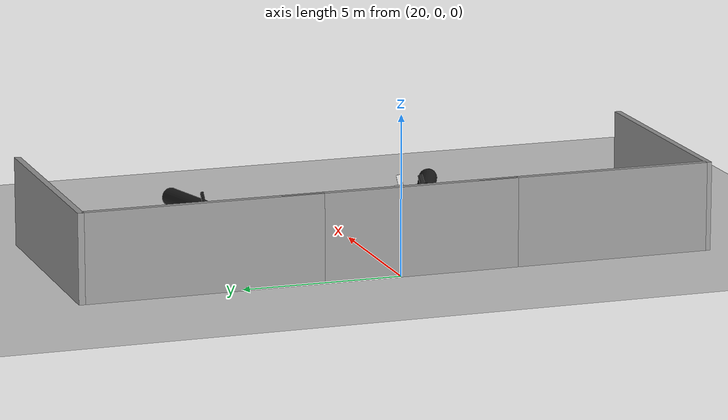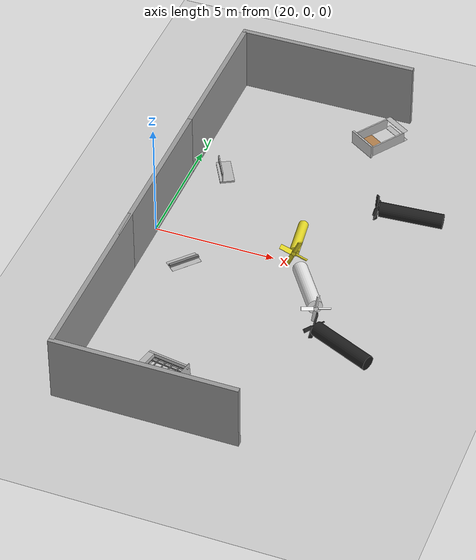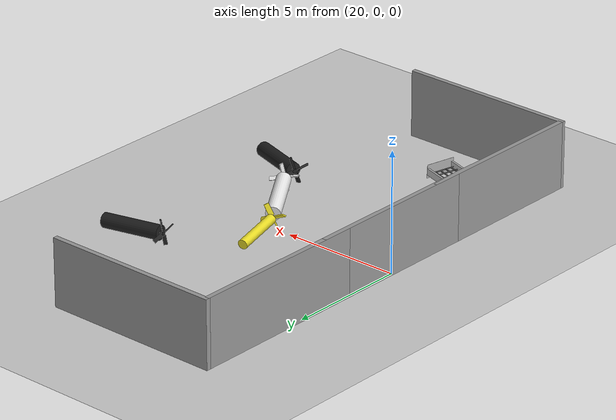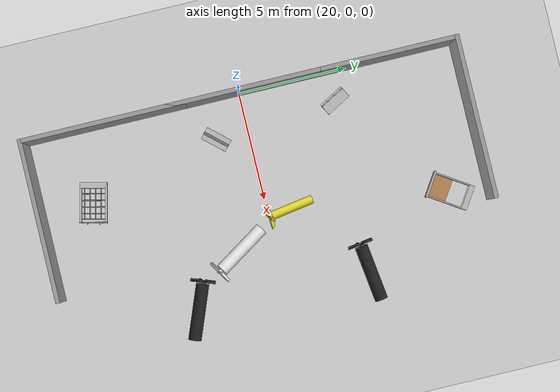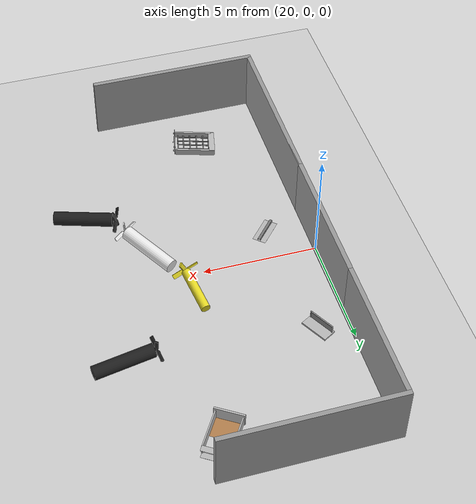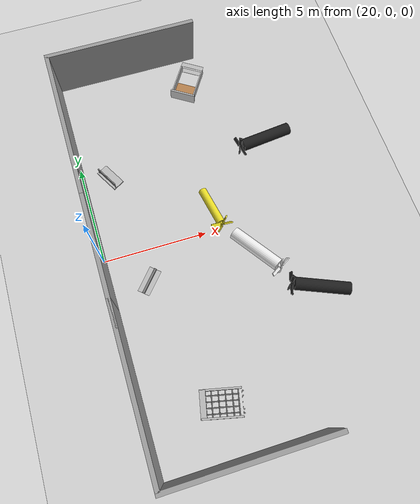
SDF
<sdf version="1.6">
 <world name="default">
  <model name="ground_plane">
   <static>1</static>
   <link name="link">
    <collision name="collision">
     <geometry><plane><normal>0 0 1</normal><size>100 100</size></plane></geometry>
     <surface><friction><ode><mu>100</mu><mu2>50</mu2></ode></friction></surface>
    </collision>
    <visual name="visual">
     <cast_shadows>0</cast_shadows>
     <geometry><plane><normal>0 0 1</normal><size>100 100</size></plane></geometry>
     <material>
      <script><uri>file://media/materials/scripts/gazebo.material</uri><name>Gazebo/Grey</name></script>
     </material>
    </visual>
   </link>
  </model>
  <model name="grey_wall_clone_0">
   <static>1</static>
   <link name="link">
    <pose>0 0 1.4 0 -0 0</pose>
    <collision name="collision"><geometry><box><size>7.5 0.2 2.8</size></box></geometry></collision>
    <visual name="visual">
     <cast_shadows>0</cast_shadows>
     <geometry><box><size>7.5 0.2 2.8</size></box></geometry>
     <material>
      <script>
       <uri>model://grey_wall/materials/scripts</uri>
       <uri>model://grey_wall/materials/textures</uri>
       <name>vrc/grey_wall</name>
      </script>
     </material>
    </visual>
   </link>
   <pose>20 -6.2 0 0 0 -1.5708</pose>
  </model>
  <model name="grey_wall_clone_1">
   <static>1</static>
   <link name="link">
    <pose>0 0 1.4 0 -0 0</pose>
    <collision name="collision"><geometry><box><size>7.5 0.2 2.8</size></box></geometry></collision>
    <visual name="visual">
     <cast_shadows>0</cast_shadows>
     <geometry><box><size>7.5 0.2 2.8</size></box></geometry>
     <material>
      <script>
       <uri>model://grey_wall/materials/scripts</uri>
       <uri>model://grey_wall/materials/textures</uri>
       <name>vrc/grey_wall</name>
      </script>
     </material>
    </visual>
   </link>
   <pose>20 6.2 0 0 0 -1.5708</pose>
  </model>
  <model name="grey_wall_clone_4">
   <static>1</static>
   <link name="link">
    <pose>0 0 1.4 0 -0 0</pose>
    <collision name="collision"><geometry><box><size>7.5 0.2 2.8</size></box></geometry></collision>
    <visual name="visual">
     <cast_shadows>0</cast_shadows>
     <geometry><box><size>7.5 0.2 2.8</size></box></geometry>
     <material>
      <script>
       <uri>model://grey_wall/materials/scripts</uri>
       <uri>model://grey_wall/materials/textures</uri>
       <name>vrc/grey_wall</name>
      </script>
     </material>
    </visual>
   </link>
   <pose>23.65 10 0 0 -0 3.14159</pose>
  </model>
  <model name="grey_wall_clone_5">
   <static>1</static>
   <link name="link">
    <pose>0 0 1.4 0 -0 0</pose>
    <collision name="collision"><geometry><box><size>7.5 0.2 2.8</size></box></geometry></collision>
    <visual name="visual">
     <cast_shadows>0</cast_shadows>
     <geometry><box><size>7.5 0.2 2.8</size></box></geometry>
     <material>
      <script>
       <uri>model://grey_wall/materials/scripts</uri>
       <uri>model://grey_wall/materials/textures</uri>
       <name>vrc/grey_wall</name>
      </script>
     </material>
    </visual>
   </link>
   <pose>23.65 -10 0 0 -0 3.14159</pose>
  </model>
  <model name="grey_wall_clone_6">
   <static>1</static>
   <link name="link">
    <pose>0 0 1.4 0 -0 0</pose>
    <collision name="collision"><geometry><box><size>7.5 0.2 2.8</size></box></geometry></collision>
    <visual name="visual">
     <cast_shadows>0</cast_shadows>
     <geometry><box><size>7.5 0.2 2.8</size></box></geometry>
     <material>
      <script>
       <uri>model://grey_wall/materials/scripts</uri>
       <uri>model://grey_wall/materials/textures</uri>
       <name>vrc/grey_wall</name>
      </script>
     </material>
    </visual>
   </link>
   <pose>20 0 0 0 0 -1.5708</pose>
  </model>
  <model name="frc2016_drawbridge">
   <link name="base">
    <inertial>
     <mass>10</mass>
     <pose>0 0 1 0 -0 0</pose>
     <inertia><ixx>3.64907</ixx><ixy>0</ixy><ixz>0</ixz><iyy>4.67075</iyy><iyz>0</iyz><izz>1.66649</izz></inertia>
    </inertial>
    <visual name="platform">
     <pose>0 0 0.0425 0 -0 0</pose>
     <geometry><box><size>1.27 0.5969 0.085</size></box></geometry>
    </visual>
    <collision name="platform">
     <pose>0 0 0.0425 0 -0 0</pose>
     <geometry><box><size>1.27 0.5969 0.085</size></box></geometry>
    </collision>
    <visual name="right_wall">
     <pose>0.55879 0.04444 0.889 0 -0 0</pose>
     <geometry><box><size>0.05715 0.45698 1.77165</size></box></geometry>
    </visual>
    <collision name="right_wall">
     <pose>0.55879 0.04444 0.889 0 -0 0</pose>
     <geometry><box><size>0.05715 0.45698 1.77165</size></box></geometry>
    </collision>
    <visual name="left_wall">
     <pose>-0.55879 0.04444 0.889 0 -0 0</pose>
     <geometry><box><size>0.05715 0.45698 1.77165</size></box></geometry>
    </visual>
    <collision name="left_wall">
     <pose>-0.55879 0.04444 0.889 0 -0 0</pose>
     <geometry><box><size>0.05715 0.45698 1.77165</size></box></geometry>
    </collision>
    <visual name="front_upper_wall">
     <pose>0 0.27611 1.84286 0 -0 0</pose>
     <geometry><box><size>1.1557 0.006347 0.254</size></box></geometry>
    </visual>
    <collision name="front_upper_wall">
     <pose>0 0.27611 1.84286 0 -0 0</pose>
     <geometry><box><size>1.1557 0.006347 0.254</size></box></geometry>
    </collision>
    <visual name="back_upper_wall">
     <pose>0 -0.18722 1.84286 0 -0 0</pose>
     <geometry><box><size>1.1557 0.006347 0.254</size></box></geometry>
    </visual>
    <collision name="back_upper_wall">
     <pose>0 -0.18722 1.84286 0 -0 0</pose>
     <geometry><box><size>1.1557 0.006347 0.254</size></box></geometry>
    </collision>
   </link>
   <link name="bridge">
    <pose>0 0.28245 0.50577 0 -0 0</pose>
    <inertial>
     <mass>2</mass>
     <pose>0 -0.28245 -0.50577 0 -0 0</pose>
     <inertia>
      <ixx>0.139361</ixx>
      <ixy>0</ixy>
      <ixz>0</ixz>
      <iyy>0.357088</iyy>
      <iyz>0</iyz>
      <izz>0.217741</izz>
     </inertia>
    </inertial>
    <visual name="visual">
     <geometry><box><size>1.14298 0.006347 0.9144</size></box></geometry>
     <material><script><name>Gazebo/WoodFloor</name><uri>__default__</uri></script></material>
    </visual>
    <collision name="collision"><geometry><box><size>1.14298 0.006347 0.9144</size></box></geometry></collision>
   </link>
   <joint name="bridge_joint" type="revolute">
    <pose>0 0 -0.4172 0 -0 0</pose>
    <parent>base</parent>
    <child>bridge</child>
    <axis>
     <xyz>1 0 0</xyz>
     <limit><lower>-2</lower><upper>0</upper></limit>
     <use_parent_model_frame>0</use_parent_model_frame>
     <dynamics><spring_reference>0</spring_reference><spring_stiffness>0</spring_stiffness></dynamics>
    </axis>
   </joint>
   <pose>26.0761 7.50823 0.325057 -1.58543 5e-06 -0.579793</pose>
  </model>
  <model name="frc2016_lowbar">
   <link name="base">
    <inertial>
     <mass>50</mass>
     <inertia>
      <ixx>0.035543</ixx>
      <ixy>0</ixy>
      <ixz>0</ixz>
      <iyy>0.134412</iyy>
      <iyz>0</iyz>
      <izz>0.165376</izz>
     </inertia>
    </inertial>
    <visual name="platform">
     <pose>0 0 0.039065 0 -0 0</pose>
     <geometry><box><size>1.26 0.5996 0.07813</size></box></geometry>
    </visual>
    <collision name="platform">
     <pose>0 0 0.039065 0 -0 0</pose>
     <geometry><box><size>1.27 0.6096 0.07813</size></box></geometry>
    </collision>
    <visual name="right_column">
     <pose>-0.57845 -0.18464 0.26863 0 -0 0</pose>
     <geometry><cylinder><radius>0.0254</radius><length>0.381</length></cylinder></geometry>
    </visual>
    <collision name="right_column">
     <pose>-0.57845 -0.18464 0.26863 0 -0 0</pose>
     <geometry><cylinder><radius>0.0254</radius><length>0.381</length></cylinder></geometry>
    </collision>
    <visual name="left_column">
     <pose>0.57845 -0.18464 0.26863 0 -0 0</pose>
     <geometry><cylinder><radius>0.0254</radius><length>0.381</length></cylinder></geometry>
    </visual>
    <collision name="left_column">
     <pose>0.57845 -0.18464 0.26863 0 -0 0</pose>
     <geometry><cylinder><radius>0.0254</radius><length>0.381</length></cylinder></geometry>
    </collision>
    <visual name="horizontal">
     <pose>0 -0.18464 0.43556 0 1.5707 0</pose>
     <geometry><cylinder><radius>0.0254</radius><length>1.2018</length></cylinder></geometry>
    </visual>
    <collision name="horizontal">
     <pose>0 -0.18464 0.43556 0 1.5707 0</pose>
     <geometry><cylinder><radius>0.0254</radius><length>1.2018</length></cylinder></geometry>
    </collision>
   </link>
   <link name="wall">
    <pose>0 -0.1778 0.24323 0 -0 0</pose>
    <inertial>
     <mass>1</mass>
     <inertia>
      <ixx>0.00774528</ixx>
      <ixy>0</ixy>
      <ixz>0</ixz>
      <iyy>0.116613</iyy>
      <iyz>0</iyz>
      <izz>0.108874</izz>
     </inertia>
    </inertial>
    <visual name="visual">
     <geometry><box><size>1.1176 0.00635 0.3</size></box></geometry>
     <material><ambient>0.46 0.46 0.46 1</ambient><diffuse>0.46 0.46 0.46 1</diffuse></material>
    </visual>
    <collision name="collision"><geometry><box><size>1.143 0.00635 0.3</size></box></geometry></collision>
   </link>
   <joint name="bar_joint" type="revolute">
    <pose>0 0 0.36378 0 -0 0</pose>
    <parent>base</parent>
    <child>wall</child>
    <axis>
     <xyz>1 0 0</xyz>
     <limit><lower>-1.5707</lower><upper>1.5707</upper></limit>
     <use_parent_model_frame>0</use_parent_model_frame>
     <dynamics><spring_reference>0</spring_reference><spring_stiffness>0</spring_stiffness></dynamics>
    </axis>
   </joint>
   <pose>21.3353 4.20095 -5e-06 2.5e-05 -4e-06 -1.06253</pose>
  </model>
  <model name="frc2016_portcullis">
   <link name="base">
    <inertial>
     <mass>50</mass>
     <pose>0 0 1.02941 0 -0 0</pose>
     <inertia><ixx>3.81711</ixx><ixy>0</ixy><ixz>0</ixz><iyy>4.87698</iyy><iyz>0</iyz><izz>1.6283</izz></inertia>
    </inertial>
    <visual name="platform">
     <pose>0 0 0.07284 0 -0 0</pose>
     <geometry><box><size>1.27 0.5842 0.003175</size></box></geometry>
    </visual>
    <collision name="platform">
     <pose>0 0 0.07284 0 -0 0</pose>
     <geometry><box><size>1.27 0.5842 0.003175</size></box></geometry>
    </collision>
    <visual name="left_column">
     <pose>0.59284 0 0.99042 0 -0 0</pose>
     <geometry><box><size>0.08375 0.28575 1.83198</size></box></geometry>
    </visual>
    <collision name="left_column">
     <pose>0.59284 0 0.99042 0 -0 0</pose>
     <geometry><box><size>0.08375 0.28575 1.83198</size></box></geometry>
    </collision>
    <visual name="right_column">
     <pose>-0.57759 0 0.99042 0 -0 0</pose>
     <geometry><box><size>0.08375 0.28575 1.83198</size></box></geometry>
    </visual>
    <collision name="right_column">
     <pose>-0.57759 0 0.99042 0 -0 0</pose>
     <geometry><box><size>0.08375 0.28575 1.83198</size></box></geometry>
    </collision>
    <visual name="top">
     <pose>-0.00034 0 1.77722 0 -0 0</pose>
     <geometry><box><size>1.22962 0.28575 0.26657</size></box></geometry>
    </visual>
    <collision name="top">
     <pose>-0.00034 0 1.77722 0 -0 0</pose>
     <geometry><box><size>1.22962 0.28575 0.26657</size></box></geometry>
    </collision>
    <visual name="castor1">
     <pose>-0.45651 -0.16234 0.03272 0 -0 0</pose>
     <geometry><sphere><radius>0.03272</radius></sphere></geometry>
    </visual>
    <collision name="castor1">
     <pose>-0.45651 -0.16234 0.03272 0 -0 0</pose>
     <geometry><sphere><radius>0.03272</radius></sphere></geometry>
    </collision>
    <visual name="castor2">
     <pose>-0.27883 0.21836 0.03272 0 -0 0</pose>
     <geometry><sphere><radius>0.03272</radius></sphere></geometry>
    </visual>
    <collision name="castor2">
     <pose>-0.27883 0.21836 0.03272 0 -0 0</pose>
     <geometry><sphere><radius>0.03272</radius></sphere></geometry>
    </collision>
    <visual name="castor3">
     <pose>0.28083 0.21906 0.03272 0 -0 0</pose>
     <geometry><sphere><radius>0.03272</radius></sphere></geometry>
    </visual>
    <collision name="castor3">
     <pose>0.28083 0.21906 0.03272 0 -0 0</pose>
     <geometry><sphere><radius>0.03272</radius></sphere></geometry>
    </collision>
    <visual name="castor4">
     <pose>0.45871 -0.16186 0.03272 0 -0 0</pose>
     <geometry><sphere><radius>0.03272</radius></sphere></geometry>
    </visual>
    <collision name="castor4">
     <pose>0.45871 -0.16186 0.03272 0 -0 0</pose>
     <geometry><sphere><radius>0.03272</radius></sphere></geometry>
    </collision>
   </link>
   <link name="gate">
    <pose>-0.0287 0.02885 0.93327 0 -0 0</pose>
    <inertial>
     <mass>2</mass>
     <inertia><ixx>3.81711</ixx><ixy>0</ixy><ixz>0</ixz><iyy>4.87698</iyy><iyz>0</iyz><izz>1.6283</izz></inertia>
    </inertial>
    <collision name="collision"><geometry><box><size>1.1938 0.02496 1.45732</size></box></geometry></collision>
    <visual name="horz_1">
     <pose>0 0 -0.70326 0 -0 0</pose>
     <geometry><box><size>1.1938 0.02496 0.0508</size></box></geometry>
     <material><ambient>0.4 0.4 0.4 1</ambient><diffuse>0.4 0.4 0.4 1</diffuse></material>
    </visual>
    <visual name="horz_2">
     <pose>0 0 -0.44926 0 -0 0</pose>
     <geometry><box><size>1.1938 0.02496 0.0508</size></box></geometry>
     <material><ambient>0.4 0.4 0.4 1</ambient><diffuse>0.4 0.4 0.4 1</diffuse></material>
    </visual>
    <visual name="horz_3">
     <pose>0 0 -0.14517 0 -0 0</pose>
     <geometry><box><size>1.1938 0.02496 0.0508</size></box></geometry>
     <material><ambient>0.4 0.4 0.4 1</ambient><diffuse>0.4 0.4 0.4 1</diffuse></material>
    </visual>
    <visual name="horz_4">
     <pose>0 0 0.16034 0 -0 0</pose>
     <geometry><box><size>1.1938 0.02496 0.0508</size></box></geometry>
     <material><ambient>0.4 0.4 0.4 1</ambient><diffuse>0.4 0.4 0.4 1</diffuse></material>
    </visual>
    <visual name="horz_5">
     <pose>0 0 0.46514 0 -0 0</pose>
     <geometry><box><size>1.1938 0.02496 0.0508</size></box></geometry>
     <material><ambient>0.4 0.4 0.4 1</ambient><diffuse>0.4 0.4 0.4 1</diffuse></material>
    </visual>
    <visual name="horz_6">
     <pose>0 0 0.72994 0 -0 0</pose>
     <geometry><box><size>1.1938 0.02496 0.0508</size></box></geometry>
     <material><ambient>0.4 0.4 0.4 1</ambient><diffuse>0.4 0.4 0.4 1</diffuse></material>
    </visual>
    <visual name="vert_1">
     <pose>-0.58448 0 0 0 -0 0</pose>
     <geometry><box><size>0.02495 0.02496 1.45732</size></box></geometry>
     <material><ambient>0.4 0.4 0.4 1</ambient><diffuse>0.4 0.4 0.4 1</diffuse></material>
    </visual>
    <visual name="vert_2">
     <pose>-0.38128 0 0 0 -0 0</pose>
     <geometry><box><size>0.0508 0.02496 1.45732</size></box></geometry>
     <material><ambient>0.4 0.4 0.4 1</ambient><diffuse>0.4 0.4 0.4 1</diffuse></material>
    </visual>
    <visual name="vert_3">
     <pose>-0.12728 0 0 0 -0 0</pose>
     <geometry><box><size>0.0508 0.02496 1.45732</size></box></geometry>
     <material><ambient>0.4 0.4 0.4 1</ambient><diffuse>0.4 0.4 0.4 1</diffuse></material>
    </visual>
    <visual name="vert_4">
     <pose>0.12672 0 0 0 -0 0</pose>
     <geometry><box><size>0.0508 0.02496 1.45732</size></box></geometry>
     <material><ambient>0.4 0.4 0.4 1</ambient><diffuse>0.4 0.4 0.4 1</diffuse></material>
    </visual>
    <visual name="vert_5">
     <pose>0.38072 0 0 0 -0 0</pose>
     <geometry><box><size>0.0508 0.02496 1.45732</size></box></geometry>
     <material><ambient>0.4 0.4 0.4 1</ambient><diffuse>0.4 0.4 0.4 1</diffuse></material>
    </visual>
    <visual name="vert_6">
     <pose>0.58392 0 0 0 -0 0</pose>
     <geometry><box><size>0.02495 0.02496 1.45732</size></box></geometry>
     <material><ambient>0.4 0.4 0.4 1</ambient><diffuse>0.4 0.4 0.4 1</diffuse></material>
    </visual>
   </link>
   <joint name="joint" type="prismatic">
    <parent>base</parent>
    <child>gate</child>
    <axis>
     <xyz>0 0 1</xyz>
     <limit><lower>0</lower><upper>1</upper></limit>
     <use_parent_model_frame>0</use_parent_model_frame>
     <dynamics><spring_reference>0</spring_reference><spring_stiffness>0</spring_stiffness></dynamics>
    </axis>
   </joint>
   <pose>24.2736 -7.86723 0.297169 -1.65189 -0 1.3455</pose>
  </model>
  <model name="frc2016_rockwall">
   <static>1</static>
   <link name="link">
    <inertial>
     <mass>10</mass>
     <pose>0 0 0.08974 0 -0 0</pose>
     <inertia><ixx>0.327091</ixx><ixy>0</ixy><ixz>0</ixz><iyy>1.37417</iyy><iyz>0</iyz><izz>1.64109</izz></inertia>
    </inertial>
    <visual name="platform">
     <pose>0 0 0.06432 0 -0 0</pose>
     <geometry><box><size>1.27 0.5969 0.003175</size></box></geometry>
    </visual>
    <collision name="platform">
     <pose>0 0 0.06432 0 -0 0</pose>
     <geometry><box><size>1.27 0.5969 0.003175</size></box></geometry>
    </collision>
    <visual name="up1">
     <pose>0 0.05166 0.12537 0 -0 0</pose>
     <geometry><box><size>1.27 0.00462 0.11892</size></box></geometry>
     <material><ambient>0.46 0.46 0.46 1</ambient><diffuse>0.46 0.46 0.46 1</diffuse></material>
    </visual>
    <collision name="up1">
     <pose>0 0.05166 0.12537 0 -0 0</pose>
     <geometry><box><size>1.27 0.00462 0.11892</size></box></geometry>
    </collision>
    <visual name="up2">
     <pose>0 -0.05801 0.12537 0 -0 0</pose>
     <geometry><box><size>1.27 0.00462 0.11892</size></box></geometry>
     <material><ambient>0.46 0.46 0.46 1</ambient><diffuse>0.46 0.46 0.46 1</diffuse></material>
    </visual>
    <collision name="up2">
     <pose>0 -0.05801 0.12537 0 -0 0</pose>
     <geometry><box><size>1.27 0.00462 0.11892</size></box></geometry>
    </collision>
    <visual name="top">
     <pose>0 -0.00249 0.18252 0 -0 0</pose>
     <geometry><box><size>1.27 0.1143 0.00462</size></box></geometry>
     <material><ambient>0.46 0.46 0.46 1</ambient><diffuse>0.46 0.46 0.46 1</diffuse></material>
    </visual>
    <collision name="top">
     <pose>0 -0.00249 0.18252 0 -0 0</pose>
     <geometry><box><size>1.27 0.1143 0.00462</size></box></geometry>
    </collision>
   </link>
   <pose>21.801 -1.51189 0 0 -0 0.841051</pose>
  </model>
  <model name="submarine_sinking_clone_0">
   <pose>28.2919 -3.72508 0.449058 1.50506 -0.292708 -1.92639</pose>
   <static>1</static>
   <link name="body">
    <pose>0 0 -1.07935 0 -0 0</pose>
    <inertial>
     <mass>1102.7</mass>
     <inertia><ixx>645.998</ixx><ixy>0</ixy><ixz>0</ixz><iyy>645.998</iyy><iyz>0</iyz><izz>49.6215</izz></inertia>
    </inertial>
    <visual name="body_visual">
     <geometry><cylinder><radius>0.3</radius><length>2.6</length></cylinder></geometry>
     <material>
      <script><uri>file://media/materials/scripts/gazebo.material</uri><name>Gazebo/Black</name></script>
     </material>
    </visual>
    <collision name="body_collision">
     <geometry><cylinder><radius>0.3</radius><length>2.6</length></cylinder></geometry>
    </collision>
    <visual name="spacer_visual">
     <pose>0 0 1.37855 0 -0 0</pose>
     <geometry><cylinder><radius>0.0933402</radius><length>0.127211</length></cylinder></geometry>
     <material>
      <script><uri>file://media/materials/scripts/gazebo.material</uri><name>Gazebo/Black</name></script>
     </material>
    </visual>
   </link>
   <link name="propeller">
    <pose>0 0 0.3455 3.14159 -0 0</pose>
    <inertial>
     <mass>25.2312</mass>
     <inertia><ixx>0.531907</ixx><ixy>0</ixy><ixz>0</ixz><iyy>0.531907</iyy><iyz>0</iyz><izz>1.0513</izz></inertia>
    </inertial>
    <visual name="blade1_visual">
     <pose>0.34334 0 0 0.785398 -0 0</pose>
     <geometry><box><size>0.5 0.154178 0.05455</size></box></geometry>
     <material>
      <script><uri>file://media/materials/scripts/gazebo.material</uri><name>Gazebo/Black</name></script>
     </material>
    </visual>
    <collision name="blade1_collision">
     <pose>0.34334 0 0 0.785398 -0 0</pose>
     <geometry><box><size>0.5 0.154178 0.05455</size></box></geometry>
    </collision>
    <visual name="blade2_visual">
     <pose>0 0.34334 0 0.785398 0 1.5708</pose>
     <geometry><box><size>0.5 0.154178 0.05455</size></box></geometry>
     <material>
      <script><uri>file://media/materials/scripts/gazebo.material</uri><name>Gazebo/Black</name></script>
     </material>
    </visual>
    <collision name="blade2_collision">
     <pose>0 0.34334 0 0.785398 0 1.5708</pose>
     <geometry><box><size>0.5 0.154178 0.05455</size></box></geometry>
    </collision>
    <visual name="blade3_visual">
     <pose>-0.34334 -0 0 -0.785398 0 0</pose>
     <geometry><box><size>0.5 0.154178 0.05455</size></box></geometry>
     <material>
      <script><uri>file://media/materials/scripts/gazebo.material</uri><name>Gazebo/Black</name></script>
     </material>
    </visual>
    <collision name="blade3_collision">
     <pose>-0.34334 -0 0 -0.785398 0 0</pose>
     <geometry><box><size>0.5 0.154178 0.05455</size></box></geometry>
    </collision>
    <visual name="blade4_visual">
     <pose>-0 -0.34334 0 -0.785398 -0 1.5708</pose>
     <geometry><box><size>0.5 0.154178 0.05455</size></box></geometry>
     <material>
      <script><uri>file://media/materials/scripts/gazebo.material</uri><name>Gazebo/Black</name></script>
     </material>
    </visual>
    <collision name="blade4_collision">
     <pose>-0 -0.34334 0 -0.785398 -0 1.5708</pose>
     <geometry><box><size>0.5 0.154178 0.05455</size></box></geometry>
    </collision>
   </link>
   <joint name="spinning_joint" type="revolute">
    <parent>body</parent>
    <child>propeller</child>
    <axis>
     <xyz>0 0 1</xyz>
     <use_parent_model_frame>1</use_parent_model_frame>
     <limit><lower>-1e+12</lower><upper>1e+12</upper><effort>-1</effort><velocity>-1</velocity></limit>
     <dynamics><spring_reference>0</spring_reference><spring_stiffness>0</spring_stiffness></dynamics>
    </axis>
   </joint>
   <plugin name="buoyancy" filename="libBuoyancyPlugin.so"><fluid_density>999.1026</fluid_density></plugin>
  </model>
  <model name="submarine_sinking_clone_1">
   <pose>28.3373 3.80949 0.449063 1.50674 -0.186656 -1.42673</pose>
   <link name="body">
    <pose>0 0 -1.07935 0 -0 0</pose>
    <inertial>
     <mass>1102.7</mass>
     <inertia><ixx>645.998</ixx><ixy>0</ixy><ixz>0</ixz><iyy>645.998</iyy><iyz>0</iyz><izz>49.6215</izz></inertia>
    </inertial>
    <visual name="body_visual">
     <geometry><cylinder><radius>0.3</radius><length>2.6</length></cylinder></geometry>
     <material>
      <script><uri>file://media/materials/scripts/gazebo.material</uri><name>Gazebo/Black</name></script>
     </material>
    </visual>
    <collision name="body_collision">
     <geometry><cylinder><radius>0.3</radius><length>2.6</length></cylinder></geometry>
    </collision>
    <visual name="spacer_visual">
     <pose>0 0 1.37855 0 -0 0</pose>
     <geometry><cylinder><radius>0.0933402</radius><length>0.127211</length></cylinder></geometry>
     <material>
      <script><uri>file://media/materials/scripts/gazebo.material</uri><name>Gazebo/Black</name></script>
     </material>
    </visual>
   </link>
   <link name="propeller">
    <pose>0 0 0.3455 3.14159 -0 0</pose>
    <inertial>
     <mass>25.2312</mass>
     <inertia><ixx>0.531907</ixx><ixy>0</ixy><ixz>0</ixz><iyy>0.531907</iyy><iyz>0</iyz><izz>1.0513</izz></inertia>
    </inertial>
    <visual name="blade1_visual">
     <pose>0.34334 0 0 0.785398 -0 0</pose>
     <geometry><box><size>0.5 0.154178 0.05455</size></box></geometry>
     <material>
      <script><uri>file://media/materials/scripts/gazebo.material</uri><name>Gazebo/Black</name></script>
     </material>
    </visual>
    <collision name="blade1_collision">
     <pose>0.34334 0 0 0.785398 -0 0</pose>
     <geometry><box><size>0.5 0.154178 0.05455</size></box></geometry>
    </collision>
    <visual name="blade2_visual">
     <pose>0 0.34334 0 0.785398 0 1.5708</pose>
     <geometry><box><size>0.5 0.154178 0.05455</size></box></geometry>
     <material>
      <script><uri>file://media/materials/scripts/gazebo.material</uri><name>Gazebo/Black</name></script>
     </material>
    </visual>
    <collision name="blade2_collision">
     <pose>0 0.34334 0 0.785398 0 1.5708</pose>
     <geometry><box><size>0.5 0.154178 0.05455</size></box></geometry>
    </collision>
    <visual name="blade3_visual">
     <pose>-0.34334 -0 0 -0.785398 0 0</pose>
     <geometry><box><size>0.5 0.154178 0.05455</size></box></geometry>
     <material>
      <script><uri>file://media/materials/scripts/gazebo.material</uri><name>Gazebo/Black</name></script>
     </material>
    </visual>
    <collision name="blade3_collision">
     <pose>-0.34334 -0 0 -0.785398 0 0</pose>
     <geometry><box><size>0.5 0.154178 0.05455</size></box></geometry>
    </collision>
    <visual name="blade4_visual">
     <pose>-0 -0.34334 0 -0.785398 -0 1.5708</pose>
     <geometry><box><size>0.5 0.154178 0.05455</size></box></geometry>
     <material>
      <script><uri>file://media/materials/scripts/gazebo.material</uri><name>Gazebo/Black</name></script>
     </material>
    </visual>
    <collision name="blade4_collision">
     <pose>-0 -0.34334 0 -0.785398 -0 1.5708</pose>
     <geometry><box><size>0.5 0.154178 0.05455</size></box></geometry>
    </collision>
   </link>
   <joint name="spinning_joint" type="revolute">
    <parent>body</parent>
    <child>propeller</child>
    <axis>
     <xyz>0 0 1</xyz>
     <use_parent_model_frame>1</use_parent_model_frame>
     <limit><lower>-1e+12</lower><upper>1e+12</upper><effort>-1</effort><velocity>-1</velocity></limit>
     <dynamics><spring_reference>0</spring_reference><spring_stiffness>0</spring_stiffness></dynamics>
    </axis>
   </joint>
   <plugin name="buoyancy" filename="libBuoyancyPlugin.so"><fluid_density>999.1026</fluid_density></plugin>
  </model>
  <model name="submarine">
   <pose>25.6547 1.12544 0.332419 1.25351 -1.12604 0.445903</pose>
   <link name="body">
    <inertial>
     <mass>251.327</mass>
     <inertia><ixx>86.2891</ixx><ixy>0</ixy><ixz>0</ixz><iyy>86.2891</iyy><iyz>0</iyz><izz>5.02655</izz></inertia>
    </inertial>
    <visual name="body_visual">
     <geometry><cylinder><radius>0.2</radius><length>2</length></cylinder></geometry>
     <material>
      <script><uri>file://media/materials/scripts/gazebo.material</uri><name>Gazebo/Yellow</name></script>
     </material>
    </visual>
    <collision name="body_collision">
     <geometry><cylinder><radius>0.2</radius><length>2</length></cylinder></geometry>
    </collision>
    <visual name="spacer_visual">
     <pose>0 0 1.05855 0 -0 0</pose>
     <geometry><cylinder><radius>0.0933402</radius><length>0.127211</length></cylinder></geometry>
     <material>
      <script><uri>file://media/materials/scripts/gazebo.material</uri><name>Gazebo/Yellow</name></script>
     </material>
    </visual>
   </link>
   <link name="propeller">
    <pose>0 0 1.09 3.14159 -0 0</pose>
    <inertial>
     <mass>21.82</mass>
     <inertia>
      <ixx>0.459994</ixx>
      <ixy>0</ixy>
      <ixz>0</ixz>
      <iyy>0.459994</iyy>
      <iyz>0</iyz>
      <izz>0.909167</izz>
     </inertia>
    </inertial>
    <visual name="blade1_visual">
     <pose>0.34334 0 0 0.785398 -0 0</pose>
     <geometry><box><size>0.5 0.2 0.05455</size></box></geometry>
     <material>
      <script><uri>file://media/materials/scripts/gazebo.material</uri><name>Gazebo/Yellow</name></script>
     </material>
    </visual>
    <collision name="blade1_collision">
     <pose>0.34334 0 0 0.785398 -0 0</pose>
     <geometry><box><size>0.5 0.2 0.05455</size></box></geometry>
    </collision>
    <visual name="blade2_visual">
     <pose>0 0.34334 0 0.785398 0 1.5708</pose>
     <geometry><box><size>0.5 0.2 0.05455</size></box></geometry>
     <material>
      <script><uri>file://media/materials/scripts/gazebo.material</uri><name>Gazebo/Yellow</name></script>
     </material>
    </visual>
    <collision name="blade2_collision">
     <pose>0 0.34334 0 0.785398 0 1.5708</pose>
     <geometry><box><size>0.5 0.2 0.05455</size></box></geometry>
    </collision>
    <visual name="blade3_visual">
     <pose>-0.34334 -0 0 -0.785398 0 0</pose>
     <geometry><box><size>0.5 0.2 0.05455</size></box></geometry>
     <material>
      <script><uri>file://media/materials/scripts/gazebo.material</uri><name>Gazebo/Yellow</name></script>
     </material>
    </visual>
    <collision name="blade3_collision">
     <pose>-0.34334 -0 0 -0.785398 0 0</pose>
     <geometry><box><size>0.5 0.2 0.05455</size></box></geometry>
    </collision>
    <visual name="blade4_visual">
     <pose>-0 -0.34334 0 -0.785398 -0 1.5708</pose>
     <geometry><box><size>0.5 0.2 0.05455</size></box></geometry>
     <material>
      <script><uri>file://media/materials/scripts/gazebo.material</uri><name>Gazebo/Yellow</name></script>
     </material>
    </visual>
    <collision name="blade4_collision">
     <pose>-0 -0.34334 0 -0.785398 -0 1.5708</pose>
     <geometry><box><size>0.5 0.2 0.05455</size></box></geometry>
    </collision>
   </link>
   <joint name="spinning_joint" type="revolute">
    <parent>body</parent>
    <child>propeller</child>
    <axis>
     <xyz>0 0 1</xyz>
     <use_parent_model_frame>1</use_parent_model_frame>
     <limit><lower>-1e+12</lower><upper>1e+12</upper><effort>-1</effort><velocity>-1</velocity></limit>
     <dynamics><spring_reference>0</spring_reference><spring_stiffness>0</spring_stiffness></dynamics>
    </axis>
   </joint>
  </model>
  <model name="submarine_buoyant_clone">
   <pose>27.5659 -2.45355 0.546858 1.05544 -1.35726 1.07906</pose>
   <link name="body">
    <pose>0 0 -1.07935 0 -0 0</pose>
    <inertial>
     <mass>367.566</mass>
     <inertia><ixx>215.333</ixx><ixy>0</ixy><ixz>0</ixz><iyy>215.333</iyy><iyz>0</iyz><izz>16.5405</izz></inertia>
    </inertial>
    <visual name="body_visual">
     <geometry><cylinder><radius>0.3</radius><length>2.6</length></cylinder></geometry>
     <material>
      <script><uri>file://media/materials/scripts/gazebo.material</uri><name>Gazebo/White</name></script>
     </material>
    </visual>
    <collision name="body_collision">
     <geometry><cylinder><radius>0.3</radius><length>2.6</length></cylinder></geometry>
    </collision>
    <visual name="spacer_visual">
     <pose>0 0 1.37855 0 -0 0</pose>
     <geometry><cylinder><radius>0.0933402</radius><length>0.127211</length></cylinder></geometry>
     <material>
      <script><uri>file://media/materials/scripts/gazebo.material</uri><name>Gazebo/White</name></script>
     </material>
    </visual>
   </link>
   <link name="propeller">
    <pose>0 0 0.3455 3.14159 -0 0</pose>
    <inertial>
     <mass>8.41041</mass>
     <inertia>
      <ixx>0.177302</ixx>
      <ixy>0</ixy>
      <ixz>0</ixz>
      <iyy>0.177302</iyy>
      <iyz>0</iyz>
      <izz>0.350434</izz>
     </inertia>
    </inertial>
    <visual name="blade1_visual">
     <pose>0.34334 0 0 0.785398 -0 0</pose>
     <geometry><box><size>0.5 0.154178 0.05455</size></box></geometry>
     <material>
      <script><uri>file://media/materials/scripts/gazebo.material</uri><name>Gazebo/White</name></script>
     </material>
    </visual>
    <collision name="blade1_collision">
     <pose>0.34334 0 0 0.785398 -0 0</pose>
     <geometry><box><size>0.5 0.154178 0.05455</size></box></geometry>
    </collision>
    <visual name="blade2_visual">
     <pose>0 0.34334 0 0.785398 0 1.5708</pose>
     <geometry><box><size>0.5 0.154178 0.05455</size></box></geometry>
     <material>
      <script><uri>file://media/materials/scripts/gazebo.material</uri><name>Gazebo/White</name></script>
     </material>
    </visual>
    <collision name="blade2_collision">
     <pose>0 0.34334 0 0.785398 0 1.5708</pose>
     <geometry><box><size>0.5 0.154178 0.05455</size></box></geometry>
    </collision>
    <visual name="blade3_visual">
     <pose>-0.34334 -0 0 -0.785398 0 0</pose>
     <geometry><box><size>0.5 0.154178 0.05455</size></box></geometry>
     <material>
      <script><uri>file://media/materials/scripts/gazebo.material</uri><name>Gazebo/White</name></script>
     </material>
    </visual>
    <collision name="blade3_collision">
     <pose>-0.34334 -0 0 -0.785398 0 0</pose>
     <geometry><box><size>0.5 0.154178 0.05455</size></box></geometry>
    </collision>
    <visual name="blade4_visual">
     <pose>-0 -0.34334 0 -0.785398 -0 1.5708</pose>
     <geometry><box><size>0.5 0.154178 0.05455</size></box></geometry>
     <material>
      <script><uri>file://media/materials/scripts/gazebo.material</uri><name>Gazebo/White</name></script>
     </material>
    </visual>
    <collision name="blade4_collision">
     <pose>-0 -0.34334 0 -0.785398 -0 1.5708</pose>
     <geometry><box><size>0.5 0.154178 0.05455</size></box></geometry>
    </collision>
   </link>
   <joint name="spinning_joint" type="revolute">
    <parent>body</parent>
    <child>propeller</child>
    <axis>
     <xyz>0 0 1</xyz>
     <use_parent_model_frame>1</use_parent_model_frame>
     <limit><lower>-1e+12</lower><upper>1e+12</upper><effort>-1</effort><velocity>-1</velocity></limit>
     <dynamics><spring_reference>0</spring_reference><spring_stiffness>0</spring_stiffness></dynamics>
    </axis>
   </joint>
  </model>
 </world>
</sdf>
